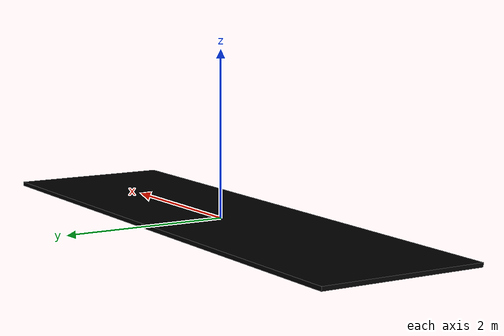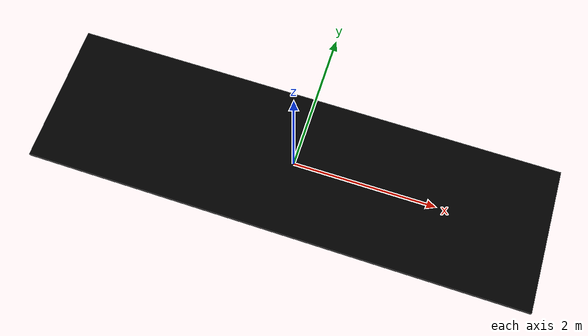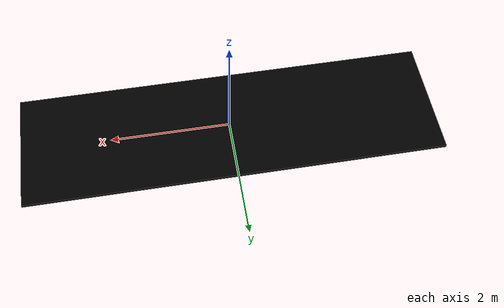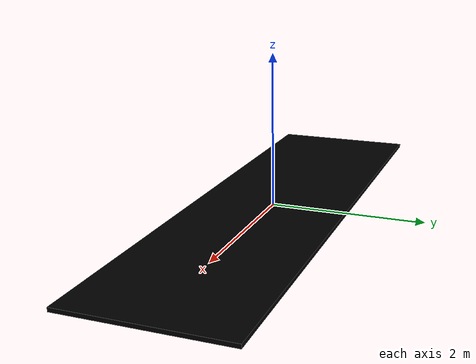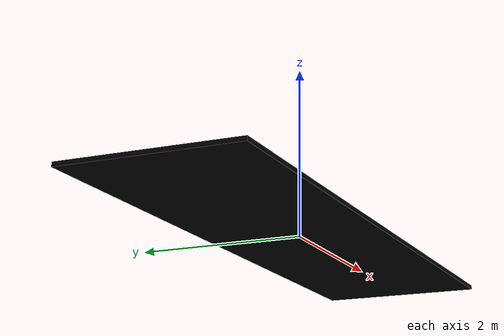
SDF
<?xml version='1.0' encoding='utf-8'?>
<sdf version="1.8">
	<model name="wall_5_2">
		<static>true</static>
      	<link name="box_link">
			<collision name="box_collision">
				<geometry>
					<box>
						<size>7 2 0.05</size>
					</box>
				</geometry>
			</collision>
			<visual name="box_visual">
				<geometry>
					<box>
						<size>7 2 0.05</size>
					</box>
				</geometry>
				<material>
					<ambient>0 0 0 1</ambient>
					<diffuse>0 0 0 1</diffuse>
					<specular>0 0 0 1</specular>
				</material>
			</visual>
      	</link>
    </model>
</sdf>
